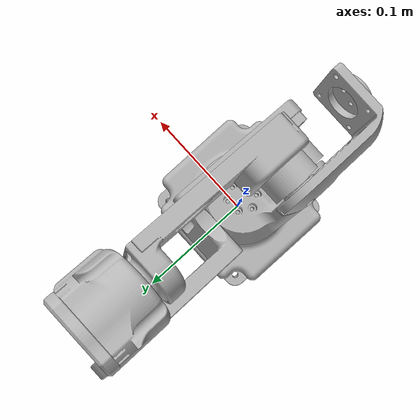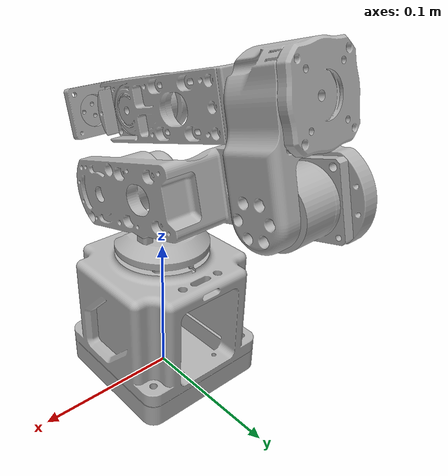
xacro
<?xml version="1.0"?>
<robot xmlns:xacro="http://www.ros.org/wiki/xacro" name="dummy_ros_r">
    <xacro:arg name="initial_positions_file" default="initial_positions.yaml" />

    <!-- Import dummy_ros_r urdf file -->
    <xacro:include filename="$(find dummy_rtx_description)/urdf/dummy_ros_r.xacro" />

    <!-- Import control_xacro -->
    <xacro:include filename="dummy_ros_r.ros2_control.xacro" />

    <xacro:dummy_ros_r_ros2_control name="FakeSystem" initial_positions_file="$(arg initial_positions_file)"/>

</robot>

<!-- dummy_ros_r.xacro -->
<robot name="dummy_ros_r" xmlns:xacro="http://www.ros.org/wiki/xacro">

<xacro:include filename="$(find dummy_rtx_description)/urdf/materials.xacro" />
<xacro:include filename="$(find dummy_rtx_description)/urdf/dummy_ros_r.trans" />
<xacro:include filename="$(find dummy_rtx_description)/urdf/dummy_ros_r.gazebo" />
<link name="base_link">
  <inertial>
    <origin xyz="-1.6917018154750703e-07 -0.003158223450406361 0.04988890332172506" rpy="0 0 0"/>
    <mass value="1.0265532197281713"/>
    <inertia ixx="0.002" iyy="0.002095" izz="0.001994" ixy="0.0" iyz="1.5e-05" ixz="0.0"/>
  </inertial>
  <visual>
    <origin xyz="0 0 0" rpy="0 0 0"/>
    <geometry>
      <mesh filename="file://$(find dummy_rtx_description)/meshes/base_link.stl" scale="0.001 0.001 0.001"/>
    </geometry>
    <material name="silver"/>
  </visual>
  <collision>
    <origin xyz="0 0 0" rpy="0 0 0"/>
    <geometry>
      <mesh filename="file://$(find dummy_rtx_description)/meshes/base_link.stl" scale="0.001 0.001 0.001"/>
    </geometry>
  </collision>
</link>

<link name="link1_1">
  <inertial>
    <origin xyz="-0.009839297876980554 -0.009665450879038438 0.016866263928464117" rpy="0 0 0"/>
    <mass value="0.1432950718919199"/>
    <inertia ixx="8.3e-05" iyy="6.8e-05" izz="0.000101" ixy="-2.7e-05" iyz="2.4e-05" ixz="1.6e-05"/>
  </inertial>
  <visual>
    <origin xyz="-0.0 -0.0 -0.096" rpy="0 0 0"/>
    <geometry>
      <mesh filename="file://$(find dummy_rtx_description)/meshes/link1_1.stl" scale="0.001 0.001 0.001"/>
    </geometry>
    <material name="silver"/>
  </visual>
  <collision>
    <origin xyz="-0.0 -0.0 -0.096" rpy="0 0 0"/>
    <geometry>
      <mesh filename="file://$(find dummy_rtx_description)/meshes/link1_1.stl" scale="0.001 0.001 0.001"/>
    </geometry>
  </collision>
</link>

<link name="link2_1">
  <inertial>
    <origin xyz="0.01692171088136483 0.07109319413511461 0.01921510032344903" rpy="0 0 0"/>
    <mass value="0.38848490516085693"/>
    <inertia ixx="0.001645" iyy="0.000269" izz="0.001568" ixy="0.000175" iyz="-0.000382" ixz="4.8e-05"/>
  </inertial>
  <visual>
    <origin xyz="0.017 0.035 -0.1335" rpy="0 0 0"/>
    <geometry>
      <mesh filename="file://$(find dummy_rtx_description)/meshes/link2_1.stl" scale="0.001 0.001 0.001"/>
    </geometry>
    <material name="silver"/>
  </visual>
  <collision>
    <origin xyz="0.017 0.035 -0.1335" rpy="0 0 0"/>
    <geometry>
      <mesh filename="file://$(find dummy_rtx_description)/meshes/link2_1.stl" scale="0.001 0.001 0.001"/>
    </geometry>
  </collision>
</link>

<link name="link3_1">
  <inertial>
    <origin xyz="-0.01133047905022835 -0.007953432285800852 0.04187792038734822" rpy="0 0 0"/>
    <mass value="0.23199545454229795"/>
    <inertia ixx="0.000142" iyy="0.000165" izz="8.9e-05" ixy="-6e-06" iyz="1.3e-05" ixz="3.8e-05"/>
  </inertial>
  <visual>
    <origin xyz="-0.017 -0.106025 -0.171288" rpy="0 0 0"/>
    <geometry>
      <mesh filename="file://$(find dummy_rtx_description)/meshes/link3_1.stl" scale="0.001 0.001 0.001"/>
    </geometry>
    <material name="silver"/>
  </visual>
  <collision>
    <origin xyz="-0.017 -0.106025 -0.171288" rpy="0 0 0"/>
    <geometry>
      <mesh filename="file://$(find dummy_rtx_description)/meshes/link3_1.stl" scale="0.001 0.001 0.001"/>
    </geometry>
  </collision>
</link>

<link name="link4_1">
  <inertial>
    <origin xyz="0.003096779923106716 -0.06258390886827792 -0.016769275463369787" rpy="0 0 0"/>
    <mass value="0.15334872374208006"/>
    <inertia ixx="0.000272" iyy="4.7e-05" izz="0.000253" ixy="-9e-06" iyz="-5.9e-05" ixz="-3e-06"/>
  </inertial>
  <visual>
    <origin xyz="-0.0 -0.078561 -0.217763" rpy="0 0 0"/>
    <geometry>
      <mesh filename="file://$(find dummy_rtx_description)/meshes/link4_1.stl" scale="0.001 0.001 0.001"/>
    </geometry>
    <material name="silver"/>
  </visual>
  <collision>
    <origin xyz="-0.0 -0.078561 -0.217763" rpy="0 0 0"/>
    <geometry>
      <mesh filename="file://$(find dummy_rtx_description)/meshes/link4_1.stl" scale="0.001 0.001 0.001"/>
    </geometry>
  </collision>
</link>

<link name="link5_1">
  <inertial>
    <origin xyz="0.0009058322817682672 -0.028070035017605043 -0.007521517263662875" rpy="0 0 0"/>
    <mass value="0.04856312889395257"/>
    <inertia ixx="4.1e-05" iyy="1.4e-05" izz="4e-05" ixy="8e-06" iyz="-7e-06" ixz="2e-06"/>
  </inertial>
  <visual>
    <origin xyz="0.0186 0.020447 -0.191234" rpy="0 0 0"/>
    <geometry>
      <mesh filename="file://$(find dummy_rtx_description)/meshes/link5_1.stl" scale="0.001 0.001 0.001"/>
    </geometry>
    <material name="silver"/>
  </visual>
  <collision>
    <origin xyz="0.0186 0.020447 -0.191234" rpy="0 0 0"/>
    <geometry>
      <mesh filename="file://$(find dummy_rtx_description)/meshes/link5_1.stl" scale="0.001 0.001 0.001"/>
    </geometry>
  </collision>
</link>

<link name="link6_1">
  <inertial>
    <origin xyz="1.431408474869382e-05 -0.0024116315393478 -0.0006596157012566384" rpy="0 0 0"/>
    <mass value="0.02015598767895705"/>
    <inertia ixx="1e-06" iyy="2e-06" izz="1e-06" ixy="0.0" iyz="0.0" ixz="-0.0"/>
  </inertial>
  <visual>
    <origin xyz="-0.0 0.080817 -0.175058" rpy="0 0 0"/>
    <geometry>
      <mesh filename="file://$(find dummy_rtx_description)/meshes/link6_1.stl" scale="0.001 0.001 0.001"/>
    </geometry>
    <material name="silver"/>
  </visual>
  <collision>
    <origin xyz="-0.0 0.080817 -0.175058" rpy="0 0 0"/>
    <geometry>
      <mesh filename="file://$(find dummy_rtx_description)/meshes/link6_1.stl" scale="0.001 0.001 0.001"/>
    </geometry>
  </collision>
</link>

<joint name="Joint1" type="revolute">
  <origin xyz="0.0 0.0 0.096" rpy="0 0 0"/>
  <parent link="base_link"/>
  <child link="link1_1"/>
  <axis xyz="0.0 0.0 -1.0"/>
  <limit upper="2.96706" lower="-2.96706" effort="100" velocity="100"/>
</joint>

<joint name="Joint2" type="revolute">
  <origin xyz="-0.017 -0.035 0.0375" rpy="0 0 0"/>
  <parent link="link1_1"/>
  <child link="link2_1"/>
  <axis xyz="1.0 0.0 0.0"/>
  <limit upper="2.879793" lower="0.0" effort="100" velocity="100"/>
</joint>

<joint name="Joint3" type="revolute">
  <origin xyz="0.034 0.141025 0.037788" rpy="0 0 0"/>
  <parent link="link2_1"/>
  <child link="link3_1"/>
  <axis xyz="-1.0 -0.0 -0.0"/>
  <limit upper="3.752458" lower="0.0" effort="100" velocity="100"/>
</joint>

<joint name="Joint4" type="revolute">
  <origin xyz="-0.017 -0.027464 0.046475" rpy="0 0 0"/>
  <parent link="link3_1"/>
  <child link="link4_1"/>
  <axis xyz="-0.0 0.965926 0.258819"/>
  <limit upper="3.141593" lower="0.0" effort="100" velocity="100"/>
</joint>

<joint name="Joint5" type="revolute">
  <origin xyz="-0.0186 -0.099008 -0.026529" rpy="0 0 0"/>
  <parent link="link4_1"/>
  <child link="link5_1"/>
  <axis xyz="-1.0 0.0 -0.0"/>
  <limit upper="2.094395" lower="-2.094395" effort="100" velocity="100"/>
</joint>

<joint name="Joint6" type="continuous">
  <origin xyz="0.0186 -0.06037 -0.016176" rpy="0 0 0"/>
  <parent link="link5_1"/>
  <child link="link6_1"/>
  <axis xyz="-0.0 -0.965926 -0.258819"/>
</joint>

</robot>

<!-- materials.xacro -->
<robot name="dummy_rtx" xmlns:xacro="http://www.ros.org/wiki/xacro" >

<material name="silver">
  <color rgba="0.700 0.700 0.700 1.000"/>
</material>

</robot>

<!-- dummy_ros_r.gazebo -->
<robot name="dummy_ros_r" xmlns:xacro="http://www.ros.org/wiki/xacro" >

<xacro:property name="body_color" value="Gazebo/Silver" />

<gazebo>
  <plugin name="control" filename="libgazebo_ros_control.so"/>
</gazebo>
<gazebo reference="base_link">
  <material>${body_color}</material>
  <mu1>0.2</mu1>
  <mu2>0.2</mu2>
  <self_collide>true</self_collide>
  <gravity>true</gravity>
</gazebo>

<gazebo reference="link1_1">
  <material>${body_color}</material>
  <mu1>0.2</mu1>
  <mu2>0.2</mu2>
  <self_collide>true</self_collide>
</gazebo>

<gazebo reference="link2_1">
  <material>${body_color}</material>
  <mu1>0.2</mu1>
  <mu2>0.2</mu2>
  <self_collide>true</self_collide>
</gazebo>

<gazebo reference="link3_1">
  <material>${body_color}</material>
  <mu1>0.2</mu1>
  <mu2>0.2</mu2>
  <self_collide>true</self_collide>
</gazebo>

<gazebo reference="link4_1">
  <material>${body_color}</material>
  <mu1>0.2</mu1>
  <mu2>0.2</mu2>
  <self_collide>true</self_collide>
</gazebo>

<gazebo reference="link5_1">
  <material>${body_color}</material>
  <mu1>0.2</mu1>
  <mu2>0.2</mu2>
  <self_collide>true</self_collide>
</gazebo>

<gazebo reference="link6_1">
  <material>${body_color}</material>
  <mu1>0.2</mu1>
  <mu2>0.2</mu2>
  <self_collide>true</self_collide>
</gazebo>

</robot>
